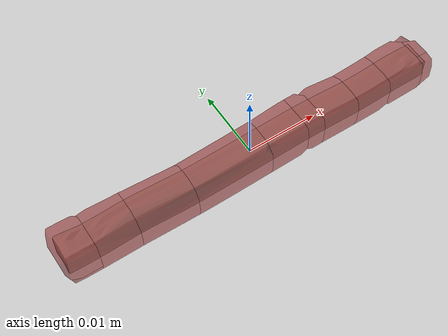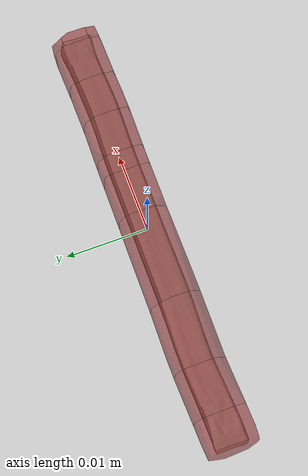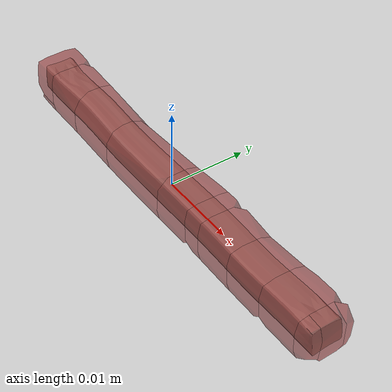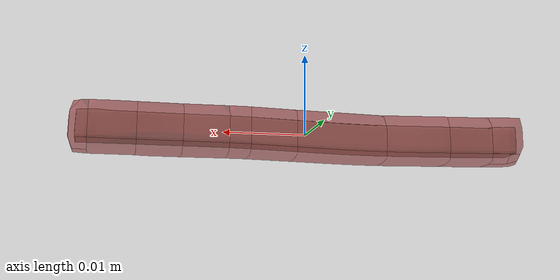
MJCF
<mujoco model="model">
  <compiler angle="radian"/>
  <asset>
    <mesh file="visual/CreamCheese003.obj" name="CreamCheese003_vis"/>
    <texture file="visual/T_BC001.png" name="CreamCheese003_material" type="2d"/>
    <material name="CreamCheese003_material" rgba="1 1 1 1.0" texture="CreamCheese003_material" shininess="0.5" specular="0.103448502657381"/>
    <mesh file="collision/CreamCheese003007.obj" name="CreamCheese003007_mesh"/>
    <mesh file="collision/CreamCheese003009.obj" name="CreamCheese003009_mesh"/>
    <mesh file="collision/CreamCheese003014.obj" name="CreamCheese003014_mesh"/>
    <mesh file="collision/CreamCheese003002.obj" name="CreamCheese003002_mesh"/>
    <mesh file="collision/CreamCheese003011.obj" name="CreamCheese003011_mesh"/>
    <mesh file="collision/CreamCheese003003.obj" name="CreamCheese003003_mesh"/>
    <mesh file="collision/CreamCheese003012.obj" name="CreamCheese003012_mesh"/>
    <mesh file="collision/CreamCheese003006.obj" name="CreamCheese003006_mesh"/>
    <mesh file="collision/CreamCheese003010.obj" name="CreamCheese003010_mesh"/>
    <mesh file="collision/CreamCheese003005.obj" name="CreamCheese003005_mesh"/>
    <mesh file="collision/CreamCheese003001.obj" name="CreamCheese003001_mesh"/>
    <mesh file="collision/CreamCheese003015.obj" name="CreamCheese003015_mesh"/>
    <mesh file="collision/CreamCheese003004.obj" name="CreamCheese003004_mesh"/>
    <mesh file="collision/CreamCheese003008.obj" name="CreamCheese003008_mesh"/>
    <mesh file="collision/CreamCheese003013.obj" name="CreamCheese003013_mesh"/>
  </asset>
  <default>
    <default class="visual">
      <geom conaffinity="0" contype="0" group="1" type="mesh"/>
    </default>
    <default class="collision">
      <geom group="0" rgba="0.5 0 0 0.5"/>
    </default>
    <default class="spawn">
      <geom group="0" rgba="1 1 1 0.5" contype="0" conaffinity="0"/>
      <site group="0" rgba="1 1 1 0.5"/>
    </default>
    <default class="region">
      <geom group="1" conaffinity="0" contype="0" rgba="0 1 0 0" mass="0"/>
    </default>
  </default>
  <worldbody>
    <body>
      <body name="object">
        <geom mesh="CreamCheese003_vis" type="mesh" solimp="0.998 0.998 0.001" solref="0.001 1" density="100" friction="0.95 0.3 0.1" class="visual" material="CreamCheese003_material"/>
        <geom mesh="CreamCheese003007_mesh" type="mesh" class="collision"/>
        <geom mesh="CreamCheese003009_mesh" type="mesh" class="collision"/>
        <geom mesh="CreamCheese003014_mesh" type="mesh" class="collision"/>
        <geom mesh="CreamCheese003002_mesh" type="mesh" class="collision"/>
        <geom mesh="CreamCheese003011_mesh" type="mesh" class="collision"/>
        <geom mesh="CreamCheese003003_mesh" type="mesh" class="collision"/>
        <geom mesh="CreamCheese003012_mesh" type="mesh" class="collision"/>
        <geom mesh="CreamCheese003006_mesh" type="mesh" class="collision"/>
        <geom mesh="CreamCheese003010_mesh" type="mesh" class="collision"/>
        <geom mesh="CreamCheese003005_mesh" type="mesh" class="collision"/>
        <geom mesh="CreamCheese003001_mesh" type="mesh" class="collision"/>
        <geom mesh="CreamCheese003015_mesh" type="mesh" class="collision"/>
        <geom mesh="CreamCheese003004_mesh" type="mesh" class="collision"/>
        <geom mesh="CreamCheese003008_mesh" type="mesh" class="collision"/>
        <geom mesh="CreamCheese003013_mesh" type="mesh" class="collision"/>
        <geom class="region" name="reg_bbox" type="box" pos="1.4110000000001205e-05 -3.6199999999999687e-06 -1.8774999999999955e-05" size="0.02782221 0.00324745 0.003202195"/>
      </body>
    </body>
  </worldbody>
  <actuator/>
</mujoco>
